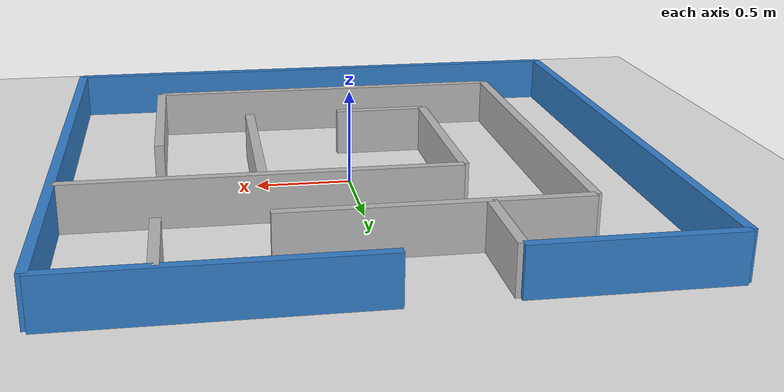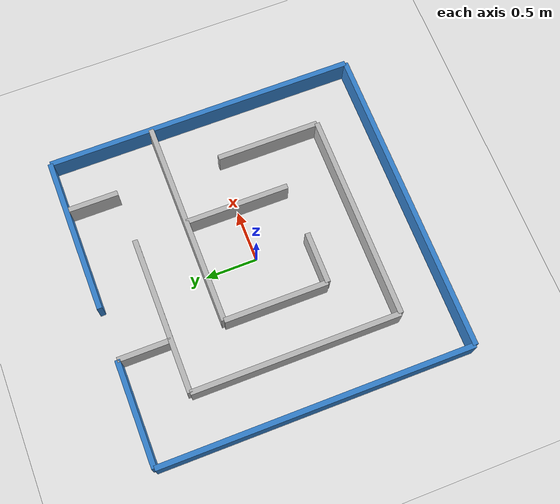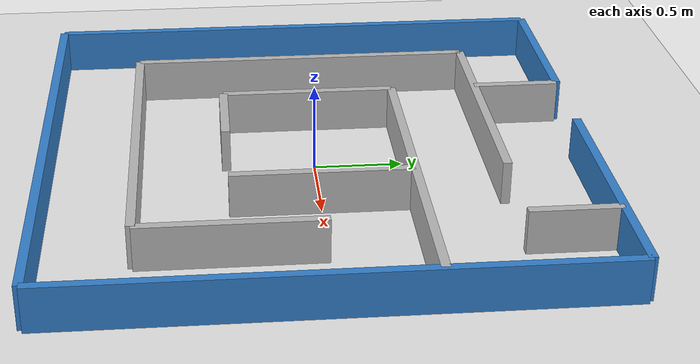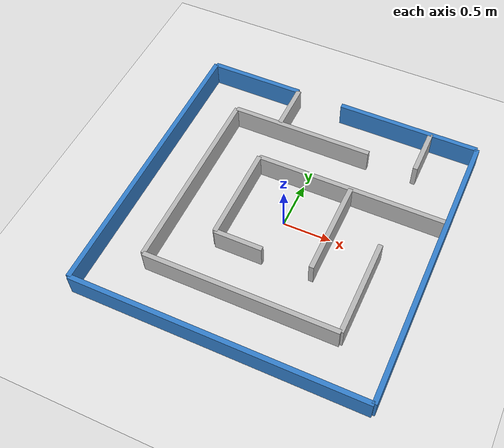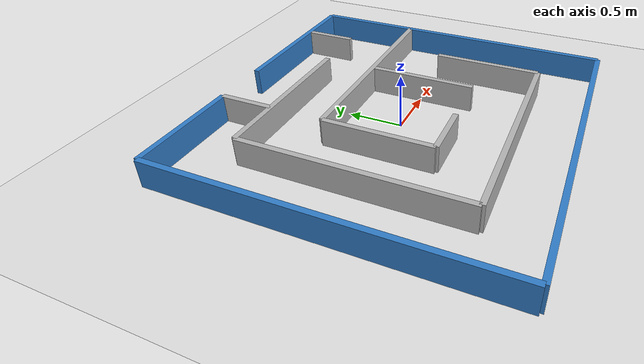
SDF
<?xml version="1.0" ?>
<sdf version="1.8">
  <world name="maze_world">

    <light name="sun" type="directional">
      <cast_shadows>true</cast_shadows>
      <pose>0 0 10 0 0 0</pose>
      <diffuse>0.8 0.8 0.8 1</diffuse>
      <specular>0.2 0.2 0.2 1</specular>
      <attenuation>
        <range>1000</range>
        <constant>0.9</constant>
        <linear>0.01</linear>
        <quadratic>0.001</quadratic>
      </attenuation>
      <direction>-0.5 0.1 -0.9</direction>
    </light>

    <scene>
      <ambient>1 1 1 1</ambient>
      <background>0.95 0.95 0.95 1</background>
      <shadows>false</shadows>
    </scene>

    <physics name="1ms" type="ignored">
      <max_step_size>0.001</max_step_size>
      <real_time_factor>1.0</real_time_factor>
    </physics>

    <plugin filename="gz-sim-physics-system" name="gz::sim::systems::Physics"/>
    <plugin filename="gz-sim-user-commands-system" name="gz::sim::systems::UserCommands"/>
    <plugin filename="gz-sim-scene-broadcaster-system" name="gz::sim::systems::SceneBroadcaster"/>
    <plugin filename="gz-sim-sensors-system" name="gz::sim::systems::Sensors">
      <render_engine>ogre2</render_engine>
    </plugin>

    <model name="ground_plane">
      <static>true</static>
      <link name="link">
        <collision name="collision">
          <geometry>
            <plane>
              <normal>0 0 1</normal>
              <size>20 20</size>
            </plane>
          </geometry>
        </collision>
        <visual name="visual">
          <geometry>
            <plane>
              <normal>0 0 1</normal>
              <size>20 20</size>
            </plane>
          </geometry>
          <material>
            <ambient>0.9 0.9 0.9 1</ambient>
            <diffuse>0.9 0.9 0.9 1</diffuse>
          </material>
        </visual>
      </link>
    </model>

 <model name='maze'>
      <static>true</static>
      <pose>0 0 0 0 0 0</pose>

      <link name='outer_left'>
        <pose>-1.5 0 0.125 0 0 0</pose><collision name='c'><geometry><box><size>0.05 3.0 0.25</size></box></geometry></collision><visual name='v'><geometry><box><size>0.05 3.0 0.25</size></box></geometry><material><ambient>0.2 0.5 0.8 1</ambient><diffuse>0.2 0.5 0.8 1</diffuse></material></visual>
      </link>
      <link name='outer_right'>
        <pose>1.5 0 0.125 0 0 0</pose><collision name='c'><geometry><box><size>0.05 3.0 0.25</size></box></geometry></collision><visual name='v'><geometry><box><size>0.05 3.0 0.25</size></box></geometry><material><ambient>0.2 0.5 0.8 1</ambient><diffuse>0.2 0.5 0.8 1</diffuse></material></visual>
      </link>
      <link name='outer_bot'>
        <pose>0 -1.5 0.125 0 0 0</pose><collision name='c'><geometry><box><size>3.0 0.05 0.25</size></box></geometry></collision><visual name='v'><geometry><box><size>3.0 0.05 0.25</size></box></geometry><material><ambient>0.2 0.5 0.8 1</ambient><diffuse>0.2 0.5 0.8 1</diffuse></material></visual>
      </link>
      <link name='outer_top_left'>
        <pose>-1.0 1.5 0.125 0 0 0</pose><collision name='c'><geometry><box><size>1.0 0.05 0.25</size></box></geometry></collision><visual name='v'><geometry><box><size>1.0 0.05 0.25</size></box></geometry><material><ambient>0.2 0.5 0.8 1</ambient><diffuse>0.2 0.5 0.8 1</diffuse></material></visual>
      </link>
      <link name='outer_top_right'>
        <pose>0.75 1.5 0.125 0 0 0</pose><collision name='c'><geometry><box><size>1.5 0.05 0.25</size></box></geometry></collision><visual name='v'><geometry><box><size>1.5 0.05 0.25</size></box></geometry><material><ambient>0.2 0.5 0.8 1</ambient><diffuse>0.2 0.5 0.8 1</diffuse></material></visual>
      </link>

      <link name='inner_c_top'>
        <pose>-0.25 1.0 0.125 0 0 0</pose><collision name='c'><geometry><box><size>1.5 0.05 0.25</size></box></geometry></collision><visual name='v'><geometry><box><size>1.5 0.05 0.25</size></box></geometry></visual>
      </link>
      <link name='inner_c_left'>
        <pose>-1.0 0 0.125 0 0 0</pose><collision name='c'><geometry><box><size>0.05 2.0 0.25</size></box></geometry></collision><visual name='v'><geometry><box><size>0.05 2.0 0.25</size></box></geometry></visual>
      </link>
      <link name='inner_c_bot'>
        <pose>0 -1.0 0.125 0 0 0</pose><collision name='c'><geometry><box><size>2.0 0.05 0.25</size></box></geometry></collision><visual name='v'><geometry><box><size>2.0 0.05 0.25</size></box></geometry></visual>
      </link>

      <link name='inner_r_top_deadend'>
        <pose>1.0 1.25 0.125 0 0 0</pose><collision name='c'><geometry><box><size>0.05 0.5 0.25</size></box></geometry></collision><visual name='v'><geometry><box><size>0.05 0.5 0.25</size></box></geometry></visual>
      </link>
      <link name='inner_r_top_1'>
        <pose>-0.5 1.25 0.125 0 0 0</pose><collision name='c'><geometry><box><size>0.05 0.5 0.25</size></box></geometry></collision><visual name='v'><geometry><box><size>0.05 0.5 0.25</size></box></geometry></visual>
      </link>
      <link name='inner_r_mid_h'>
        <pose>0.5 0.5 0.125 0 0 0</pose><collision name='c'><geometry><box><size>2.0 0.05 0.25</size></box></geometry></collision><visual name='v'><geometry><box><size>2.0 0.05 0.25</size></box></geometry></visual>
      </link>
      <link name='inner_zigzag_v'>
        <pose>0.5 0 0.125 0 0 0</pose><collision name='c'><geometry><box><size>0.05 1.0 0.25</size></box></geometry></collision><visual name='v'><geometry><box><size>0.05 1.0 0.25</size></box></geometry></visual>
      </link>

      <link name='inner_u_left'>
        <pose>-0.5 0 0.125 0 0 0</pose><collision name='c'><geometry><box><size>0.05 1.0 0.25</size></box></geometry></collision><visual name='v'><geometry><box><size>0.05 1.0 0.25</size></box></geometry></visual>
      </link>
      <link name='inner_u_bot'>
        <pose>-0.25 -0.5 0.125 0 0 0</pose><collision name='c'><geometry><box><size>0.5 0.05 0.25</size></box></geometry></collision><visual name='v'><geometry><box><size>0.5 0.05 0.25</size></box></geometry></visual>
      </link>
      <link name='inner_u_right'>
        <pose>1.0 -0.5 0.125 0 0 0</pose><collision name='c'><geometry><box><size>0.05 1.0 0.25</size></box></geometry></collision><visual name='v'><geometry><box><size>0.05 1.0 0.25</size></box></geometry></visual>
      </link>
    </model>
  </world>
</sdf>
